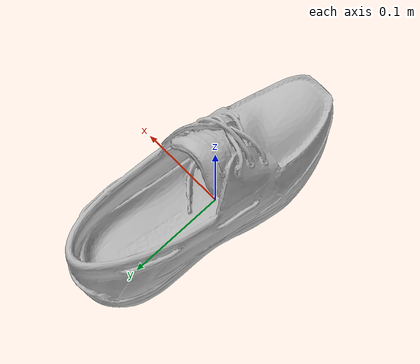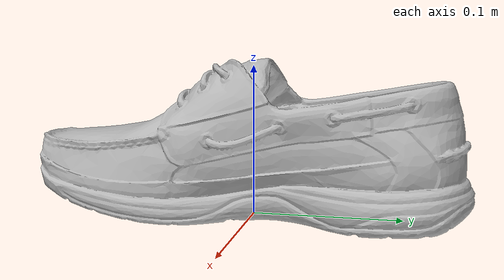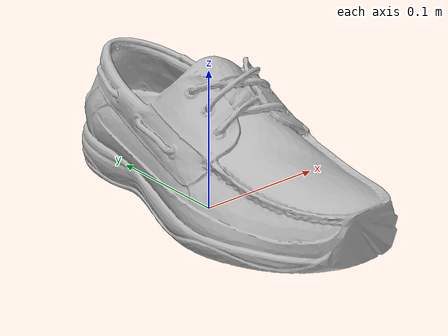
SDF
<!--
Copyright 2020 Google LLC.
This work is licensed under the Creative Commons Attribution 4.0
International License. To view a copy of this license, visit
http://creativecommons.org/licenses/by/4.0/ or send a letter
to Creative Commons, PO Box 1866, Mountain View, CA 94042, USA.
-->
<?xml version="1.0" ?>
<sdf version="1.6">
  <model name="Mens_ASV_Billfish_Boat_Shoe_in_Tan_Leather_wmUJ5PbwANc">
    <link name="link_0">
      <visual name="visual">
        <geometry>
          <mesh>
            <uri>meshes/model.obj</uri>
          </mesh>
        </geometry>
      </visual>
      <collision name="collision_0">
        <geometry>
          <mesh>
            <uri>meshes/model.obj</uri>
          </mesh>
        </geometry>
      </collision>
    </link>
  </model>
</sdf>
